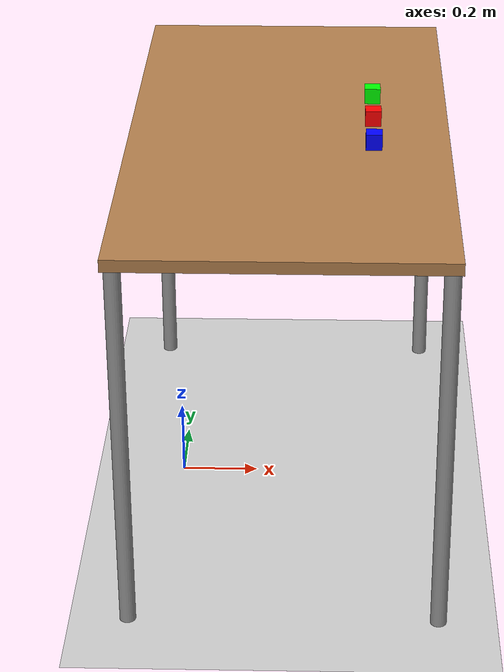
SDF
<?xml version="1.0" ?>
<sdf version="1.6">
  <world name="arm_and_table">
    <scene>
      <shadows>0</shadows>
      <ambient>0.6 0.6 0.6 1.0</ambient>
      <background>0.7 0.7 0.7 1.0</background>
    </scene>

    <gui>
      <camera name="user_camera">
        <pose>0.75 -0.75 1.4 0 0.29 2.21</pose>
      </camera>
    </gui>

    <light type="directional" name="sun">
      <cast_shadows>false</cast_shadows>
      <pose>0 0 10 0 0 0</pose>
      <diffuse>1.0 1.0 1.0 1</diffuse>
      <specular>0.5 0.5 0.5 1</specular>
      <direction>-0.5 0.1 -0.9</direction>
    </light>

    <model name="table">
      <static>true</static>
      <include>
        <uri>model://table</uri>
      </include>
      <pose>0.29 0 0 0 0 1.5708</pose>
    </model>

    <model name="red_box">
      <pose>0.5 0.0 1.05 0 0 0</pose>
      <link name="link">
        <inertial>
          <mass>0.1</mass>
          <inertia>
            <ixx>1.67e-5</ixx><ixy>0.0</ixy><ixz>0.0</ixz>
            <iyy>1.67e-5</iyy><iyz>0.0</iyz>
            <izz>1.67e-5</izz>
          </inertia>
        </inertial>
        <collision name="collision">
          <geometry>
            <box><size>0.04 0.04 0.04</size></box>
          </geometry>
          <surface>
            <friction>
              <ode><mu>1.0</mu><mu2>1.0</mu2></ode>
            </friction>
          </surface>
        </collision>
        <visual name="visual">
          <geometry>
            <box><size>0.04 0.04 0.04</size></box>
          </geometry>
          <material>
            <ambient>1 0 0 1</ambient>
            <diffuse>1 0 0 1</diffuse>
            <specular>0.5 0.5 0.5 1</specular>
          </material>
        </visual>
      </link>
    </model>

    <model name="green_box">
      <pose>0.5 0.15 1.05 0 0 0</pose>
      <link name="link">
        <inertial>
          <mass>0.1</mass>
          <inertia>
            <ixx>1.67e-5</ixx><ixy>0.0</ixy><ixz>0.0</ixz>
            <iyy>1.67e-5</iyy><iyz>0.0</iyz>
            <izz>1.67e-5</izz>
          </inertia>
        </inertial>
        <collision name="collision">
          <geometry>
            <box><size>0.04 0.04 0.04</size></box>
          </geometry>
          <surface>
            <friction>
              <ode><mu>1.0</mu><mu2>1.0</mu2></ode>
            </friction>
          </surface>
        </collision>
        <visual name="visual">
          <geometry>
            <box><size>0.04 0.04 0.04</size></box>
          </geometry>
          <material>
            <ambient>0 1 0 1</ambient>
            <diffuse>0 1 0 1</diffuse>
            <specular>0.5 0.5 0.5 1</specular>
          </material>
        </visual>
      </link>
    </model>

    <model name="blue_box">
      <pose>0.5 -0.15 1.05 0 0 0</pose>
      <link name="link">
        <inertial>
          <mass>0.1</mass>
          <inertia>
            <ixx>1.67e-5</ixx><ixy>0.0</ixy><ixz>0.0</ixz>
            <iyy>1.67e-5</iyy><iyz>0.0</iyz>
            <izz>1.67e-5</izz>
          </inertia>
        </inertial>
        <collision name="collision">
          <geometry>
            <box><size>0.04 0.04 0.04</size></box>
          </geometry>
          <surface>
            <friction>
              <ode><mu>1.0</mu><mu2>1.0</mu2></ode>
            </friction>
          </surface>
        </collision>
        <visual name="visual">
          <geometry>
            <box><size>0.04 0.04 0.04</size></box>
          </geometry>
          <material>
            <ambient>0 0 1 1</ambient>
            <diffuse>0 0 1 1</diffuse>
            <specular>0.5 0.5 0.5 1</specular>
          </material>
        </visual>
      </link>
    </model>

    <model name="ground_plane">
      <static>true</static>
      <include>
        <uri>model://ground_plane</uri>
      </include>
    </model>
  </world>
</sdf>

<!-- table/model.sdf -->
<sdf version="1.5">
  <model name="table">
    <static>true</static>
    <link name="link">
      <collision name="surface">
        <pose>0 0 1.0 0 0 0</pose>
        <geometry>
          <box>
            <size>1.5 0.8 0.03</size>
          </box>
        </geometry>
        <surface>
          <friction>
            <ode>
              <mu>0.6</mu>
              <mu2>0.6</mu2>
            </ode>
          </friction>
        </surface>
      </collision>
      <visual name="visual1">
        <pose>0 0 1.0 0 0 0</pose>
        <geometry>
          <box>
            <size>1.5 0.8 0.03</size>
          </box>
        </geometry>
        <material>
          <script>
            <uri>model://media/materials/scripts/gazebo.material</uri>
            <name>Gazebo/Wood</name>
          </script>
        </material>
      </visual>
      <collision name="front_left_leg">
        <pose>0.68 0.38 0.5 0 0 0</pose>
        <geometry>
          <cylinder>
            <radius>0.02</radius>
            <length>1.0</length>
          </cylinder>
        </geometry>
      </collision>
      <visual name="front_left_leg">
        <pose>0.68 0.38 0.5 0 0 0</pose>
        <geometry>
          <cylinder>
            <radius>0.02</radius>
            <length>1.0</length>
          </cylinder>
        </geometry>
        <material>
          <script>
            <uri>model://media/materials/scripts/gazebo.material</uri>
            <name>Gazebo/Grey</name>
          </script>
        </material>
      </visual>
      <collision name="front_right_leg">
        <pose>0.68 -0.38 0.5 0 0 0</pose>
        <geometry>
          <cylinder>
            <radius>0.02</radius>
            <length>1.0</length>
          </cylinder>
        </geometry>
      </collision>
      <visual name="front_right_leg">
        <pose>0.68 -0.38 0.5 0 0 0</pose>
        <geometry>
          <cylinder>
            <radius>0.02</radius>
            <length>1.0</length>
          </cylinder>
        </geometry>
        <material>
          <script>
            <uri>model://media/materials/scripts/gazebo.material</uri>
            <name>Gazebo/Grey</name>
          </script>
        </material>
      </visual>
      <collision name="back_right_leg">
        <pose>-0.68 -0.38 0.5 0 0 0</pose>
        <geometry>
          <cylinder>
            <radius>0.02</radius>
            <length>1.0</length>
          </cylinder>
        </geometry>
      </collision>
      <visual name="back_right_leg">
        <pose>-0.68 -0.38 0.5 0 0 0</pose>
        <geometry>
          <cylinder>
            <radius>0.02</radius>
            <length>1.0</length>
          </cylinder>
        </geometry>
        <material>
          <script>
            <uri>model://media/materials/scripts/gazebo.material</uri>
            <name>Gazebo/Grey</name>
          </script>
        </material>
      </visual>
      <collision name="back_left_leg">
        <pose>-0.68 0.38 0.5 0 0 0</pose>
        <geometry>
          <cylinder>
            <radius>0.02</radius>
            <length>1.0</length>
          </cylinder>
        </geometry>
      </collision>
      <visual name="back_left_leg">
        <pose>-0.68 0.38 0.5 0 0 0</pose>
        <geometry>
          <cylinder>
            <radius>0.02</radius>
            <length>1.0</length>
          </cylinder>
        </geometry>
        <material>
          <script>
            <uri>model://media/materials/scripts/gazebo.material</uri>
            <name>Gazebo/Grey</name>
          </script>
        </material>
      </visual>
    </link>
  </model>
</sdf>
